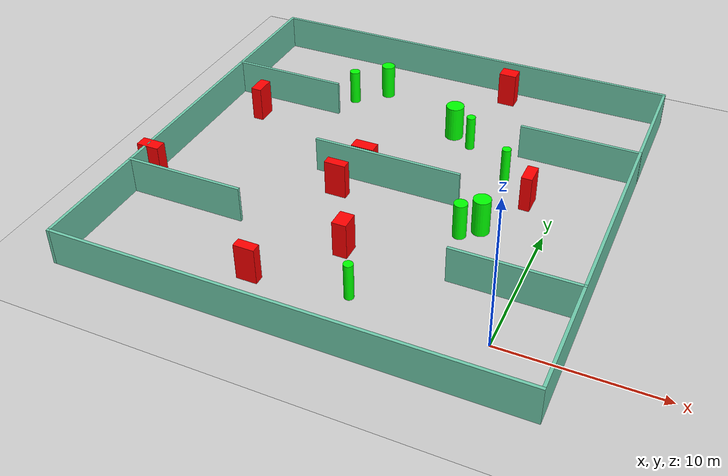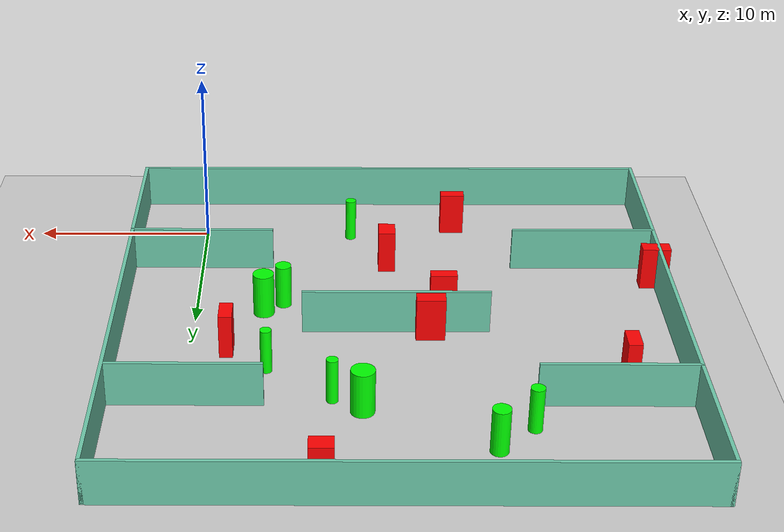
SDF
<sdf version="1.7">
 <world name="default">
  <light name="sun" type="directional">
   <pose>0 0 10 0 -0 0</pose>
   <diffuse>0.8 0.8 0.8 1</diffuse>
   <specular>0.2 0.2 0.2 1</specular>
   <attenuation>
    <range>1000</range>
    <constant>0.9</constant>
    <linear>0.01</linear>
    <quadratic>0.001</quadratic>
   </attenuation>
   <direction>-0.5 0.1 -0.9</direction>
   <spot><inner_angle>0</inner_angle><outer_angle>0</outer_angle><falloff>0</falloff></spot>
  </light>
  <model name="ground_plane">
   <static>1</static>
   <link name="link">
    <collision name="collision">
     <geometry><plane><normal>0 0 1</normal><size>100 100</size></plane></geometry>
     <surface>
      <contact><collide_bitmask>65535</collide_bitmask></contact>
      <friction><ode><mu>100</mu><mu2>50</mu2></ode></friction>
     </surface>
    </collision>
    <visual name="visual">
     <cast_shadows>0</cast_shadows>
     <geometry><plane><normal>0 0 1</normal><size>100 100</size></plane></geometry>
     <material>
      <script><uri>file://media/materials/scripts/gazebo.material</uri><name>Gazebo/Grey</name></script>
     </material>
    </visual>
   </link>
  </model>
  <gravity>0 0 -9.8</gravity>
  <magnetic_field>6e-06 2.3e-05 -4.2e-05</magnetic_field>
  <atmosphere type="adiabatic"/>
  <physics type="ode">
   <max_step_size>0.001</max_step_size>
   <real_time_factor>1</real_time_factor>
   <real_time_update_rate>1000</real_time_update_rate>
  </physics>
  <scene><ambient>0.4 0.4 0.4 1</ambient><background>0.7 0.7 0.7 1</background><shadows>1</shadows></scene>
  <spherical_coordinates>
   <surface_model>EARTH_WGS84</surface_model>
   <latitude_deg>0</latitude_deg>
   <longitude_deg>0</longitude_deg>
   <elevation>0</elevation>
   <heading_deg>0</heading_deg>
  </spherical_coordinates>
  <model name="my_base_walls">
   <link name="Wall_10">
    <collision name="Wall_10_Collision">
     <geometry><box><size>8.2 0.2 2.5</size></box></geometry>
     <pose>0 0 1.25 0 -0 0</pose>
    </collision>
    <visual name="Wall_10_Visual">
     <pose>0 0 1.25 0 -0 0</pose>
     <geometry><box><size>8.2 0.2 2.5</size></box></geometry>
     <material>
      <script><uri>file://media/materials/scripts/gazebo.material</uri><name>Gazebo/Grey</name></script>
      <ambient>0.435294 0.796078 0.67451 1</ambient>
     </material>
     <meta><layer>0</layer></meta>
    </visual>
    <pose>-11 -7 0 0 -0 0</pose>
   </link>
   <link name="Wall_12">
    <collision name="Wall_12_Collision">
     <geometry><box><size>8.2 0.2 2.5</size></box></geometry>
     <pose>0 0 1.25 0 -0 0</pose>
    </collision>
    <visual name="Wall_12_Visual">
     <pose>0 0 1.25 0 -0 0</pose>
     <geometry><box><size>8.2 0.2 2.5</size></box></geometry>
     <material>
      <script><uri>file://media/materials/scripts/gazebo.material</uri><name>Gazebo/Grey</name></script>
      <ambient>0.435294 0.796078 0.67451 1</ambient>
     </material>
     <meta><layer>0</layer></meta>
    </visual>
    <pose>-11 7 0 0 -0 0</pose>
   </link>
   <link name="Wall_14">
    <collision name="Wall_14_Collision">
     <geometry><box><size>8.2 0.2 2.5</size></box></geometry>
     <pose>0 0 1.25 0 -0 0</pose>
    </collision>
    <visual name="Wall_14_Visual">
     <pose>0 0 1.25 0 -0 0</pose>
     <geometry><box><size>8.2 0.2 2.5</size></box></geometry>
     <material>
      <script><uri>file://media/materials/scripts/gazebo.material</uri><name>Gazebo/Grey</name></script>
      <ambient>0.435294 0.796078 0.67451 1</ambient>
     </material>
     <meta><layer>0</layer></meta>
    </visual>
    <pose>11 7 0 0 -0 3.14159</pose>
   </link>
   <link name="Wall_16">
    <collision name="Wall_16_Collision">
     <geometry><box><size>10.2 0.2 2.5</size></box></geometry>
     <pose>0 0 1.25 0 -0 0</pose>
    </collision>
    <visual name="Wall_16_Visual">
     <pose>0 0 1.25 0 -0 0</pose>
     <geometry><box><size>10.2 0.2 2.5</size></box></geometry>
     <material>
      <script><uri>file://media/materials/scripts/gazebo.material</uri><name>Gazebo/Grey</name></script>
      <ambient>0.435294 0.796078 0.67451 1</ambient>
     </material>
     <meta><layer>0</layer></meta>
    </visual>
    <pose>0 0 0 0 -0 3.14159</pose>
   </link>
   <link name="Wall_2">
    <collision name="Wall_2_Collision">
     <geometry><box><size>30.2 0.2 2.5</size></box></geometry>
     <pose>0 0 1.25 0 -0 0</pose>
    </collision>
    <visual name="Wall_2_Visual">
     <pose>0 0 1.25 0 -0 0</pose>
     <geometry><box><size>30.2 0.2 2.5</size></box></geometry>
     <material>
      <script><uri>file://media/materials/scripts/gazebo.material</uri><name>Gazebo/Grey</name></script>
      <ambient>0.435294 0.796078 0.67451 1</ambient>
     </material>
     <meta><layer>0</layer></meta>
    </visual>
    <pose>0 -15 0 0 -0 3.14159</pose>
   </link>
   <link name="Wall_3">
    <collision name="Wall_3_Collision">
     <geometry><box><size>30.2 0.2 2.5</size></box></geometry>
     <pose>0 0 1.25 0 -0 0</pose>
    </collision>
    <visual name="Wall_3_Visual">
     <pose>0 0 1.25 0 -0 0</pose>
     <geometry><box><size>30.2 0.2 2.5</size></box></geometry>
     <material>
      <script><uri>file://media/materials/scripts/gazebo.material</uri><name>Gazebo/Grey</name></script>
      <ambient>0.435294 0.796078 0.67451 1</ambient>
     </material>
     <meta><layer>0</layer></meta>
    </visual>
    <pose>-15 0 0 0 -0 1.5708</pose>
   </link>
   <link name="Wall_4">
    <collision name="Wall_4_Collision">
     <geometry><box><size>30.2 0.2 2.5</size></box></geometry>
     <pose>0 0 1.25 0 -0 0</pose>
    </collision>
    <visual name="Wall_4_Visual">
     <pose>0 0 1.25 0 -0 0</pose>
     <geometry><box><size>30.2 0.2 2.5</size></box></geometry>
     <material>
      <script><uri>file://media/materials/scripts/gazebo.material</uri><name>Gazebo/Grey</name></script>
      <ambient>0.435294 0.796078 0.67451 1</ambient>
     </material>
     <meta><layer>0</layer></meta>
    </visual>
    <pose>0 15 0 0 -0 0</pose>
   </link>
   <link name="Wall_6">
    <collision name="Wall_6_Collision">
     <geometry><box><size>30.2 0.2 2.5</size></box></geometry>
     <pose>0 0 1.25 0 -0 0</pose>
    </collision>
    <visual name="Wall_6_Visual">
     <pose>0 0 1.25 0 -0 0</pose>
     <geometry><box><size>30.2 0.2 2.5</size></box></geometry>
     <material>
      <script><uri>file://media/materials/scripts/gazebo.material</uri><name>Gazebo/Grey</name></script>
      <ambient>0.435294 0.796078 0.67451 1</ambient>
     </material>
     <meta><layer>0</layer></meta>
    </visual>
    <pose>15 0 0 0 -0 1.5708</pose>
   </link>
   <link name="Wall_8">
    <collision name="Wall_8_Collision">
     <geometry><box><size>8.2 0.2 2.5</size></box></geometry>
     <pose>0 0 1.25 0 -0 0</pose>
    </collision>
    <visual name="Wall_8_Visual">
     <pose>0 0 1.25 0 -0 0</pose>
     <geometry><box><size>8.2 0.2 2.5</size></box></geometry>
     <material>
      <script><uri>file://media/materials/scripts/gazebo.material</uri><name>Gazebo/Grey</name></script>
      <ambient>0.435294 0.796078 0.67451 1</ambient>
     </material>
     <meta><layer>0</layer></meta>
    </visual>
    <pose>11 -7 0 0 -0 3.14159</pose>
   </link>
   <static>1</static>
   <pose>-11 11 0 0 -0 0</pose>
  </model>
  <model name="cylinder1">
   <static>1</static>
   <link name="link">
    <inertial>
     <mass>1</mass>
     <inertia><ixx>0.5</ixx><ixy>0</ixy><ixz>0</ixz><iyy>0.5</iyy><iyz>0</iyz><izz>1</izz></inertia>
    </inertial>
    <collision name="collision">
     <geometry><cylinder><radius>0.3054481905468283</radius><length>2.5</length></cylinder></geometry>
    </collision>
    <visual name="visual">
     <geometry><cylinder><radius>0.3054481905468283</radius><length>2.5</length></cylinder></geometry>
     <material>
      <ambient>0 1 0 1</ambient>
      <diffuse>0 1 0 1</diffuse>
      <specular>0.1 0.1 0.1 1</specular>
      <emissive>0 0 0 0</emissive>
     </material>
    </visual>
   </link>
   <pose>-8.627590096709401 0.3876798577821128 1.25 0 0 0</pose>
  </model>
  <model name="cylinder2">
   <static>1</static>
   <link name="link">
    <inertial>
     <mass>1</mass>
     <inertia><ixx>0.5</ixx><ixy>0</ixy><ixz>0</ixz><iyy>0.5</iyy><iyz>0</iyz><izz>1</izz></inertia>
    </inertial>
    <collision name="collision">
     <geometry><cylinder><radius>0.3687715687319021</radius><length>2.5</length></cylinder></geometry>
    </collision>
    <visual name="visual">
     <geometry><cylinder><radius>0.3687715687319021</radius><length>2.5</length></cylinder></geometry>
     <material>
      <ambient>0 1 0 1</ambient>
      <diffuse>0 1 0 1</diffuse>
      <specular>0.1 0.1 0.1 1</specular>
      <emissive>0 0 0 0</emissive>
     </material>
    </visual>
   </link>
   <pose>-17.58797021595309 20.117294164472334 1.25 0 0 0</pose>
  </model>
  <model name="cylinder3">
   <static>1</static>
   <link name="link">
    <inertial>
     <mass>1</mass>
     <inertia><ixx>0.5</ixx><ixy>0</ixy><ixz>0</ixz><iyy>0.5</iyy><iyz>0</iyz><izz>1</izz></inertia>
    </inertial>
    <collision name="collision">
     <geometry><cylinder><radius>0.4434190297697547</radius><length>2.5</length></cylinder></geometry>
    </collision>
    <visual name="visual">
     <geometry><cylinder><radius>0.4434190297697547</radius><length>2.5</length></cylinder></geometry>
     <material>
      <ambient>0 1 0 1</ambient>
      <diffuse>0 1 0 1</diffuse>
      <specular>0.1 0.1 0.1 1</specular>
      <emissive>0 0 0 0</emissive>
     </material>
    </visual>
   </link>
   <pose>-4.815633292169032 8.200437213028582 1.25 0 0 0</pose>
  </model>
  <model name="cylinder4">
   <static>1</static>
   <link name="link">
    <inertial>
     <mass>1</mass>
     <inertia><ixx>0.5</ixx><ixy>0</ixy><ixz>0</ixz><iyy>0.5</iyy><iyz>0</iyz><izz>1</izz></inertia>
    </inertial>
    <collision name="collision">
     <geometry><cylinder><radius>0.6335926558762861</radius><length>2.5</length></cylinder></geometry>
    </collision>
    <visual name="visual">
     <geometry><cylinder><radius>0.6335926558762861</radius><length>2.5</length></cylinder></geometry>
     <material>
      <ambient>0 1 0 1</ambient>
      <diffuse>0 1 0 1</diffuse>
      <specular>0.1 0.1 0.1 1</specular>
      <emissive>0 0 0 0</emissive>
     </material>
    </visual>
   </link>
   <pose>-9.084755179229692 18.59450141080725 1.25 0 0 0</pose>
  </model>
  <model name="cylinder5">
   <static>1</static>
   <link name="link">
    <inertial>
     <mass>1</mass>
     <inertia><ixx>0.5</ixx><ixy>0</ixy><ixz>0</ixz><iyy>0.5</iyy><iyz>0</iyz><izz>1</izz></inertia>
    </inertial>
    <collision name="collision">
     <geometry><cylinder><radius>0.4754250460745518</radius><length>2.5</length></cylinder></geometry>
    </collision>
    <visual name="visual">
     <geometry><cylinder><radius>0.4754250460745518</radius><length>2.5</length></cylinder></geometry>
     <material>
      <ambient>0 1 0 1</ambient>
      <diffuse>0 1 0 1</diffuse>
      <specular>0.1 0.1 0.1 1</specular>
      <emissive>0 0 0 0</emissive>
     </material>
    </visual>
   </link>
   <pose>-15.661851168046205 21.905468786813977 1.25 0 0 0</pose>
  </model>
  <model name="cylinder6">
   <static>1</static>
   <link name="link">
    <inertial>
     <mass>1</mass>
     <inertia><ixx>0.5</ixx><ixy>0</ixy><ixz>0</ixz><iyy>0.5</iyy><iyz>0</iyz><izz>1</izz></inertia>
    </inertial>
    <collision name="collision">
     <geometry><cylinder><radius>0.307872666364747</radius><length>2.5</length></cylinder></geometry>
    </collision>
    <visual name="visual">
     <geometry><cylinder><radius>0.307872666364747</radius><length>2.5</length></cylinder></geometry>
     <material>
      <ambient>0 1 0 1</ambient>
      <diffuse>0 1 0 1</diffuse>
      <specular>0.1 0.1 0.1 1</specular>
      <emissive>0 0 0 0</emissive>
     </material>
    </visual>
   </link>
   <pose>-4.099982868132443 14.90755916535273 1.25 0 0 0</pose>
  </model>
  <model name="cylinder7">
   <static>1</static>
   <link name="link">
    <inertial>
     <mass>1</mass>
     <inertia><ixx>0.5</ixx><ixy>0</ixy><ixz>0</ixz><iyy>0.5</iyy><iyz>0</iyz><izz>1</izz></inertia>
    </inertial>
    <collision name="collision">
     <geometry><cylinder><radius>0.5799055854135846</radius><length>2.5</length></cylinder></geometry>
    </collision>
    <visual name="visual">
     <geometry><cylinder><radius>0.5799055854135846</radius><length>2.5</length></cylinder></geometry>
     <material>
      <ambient>0 1 0 1</ambient>
      <diffuse>0 1 0 1</diffuse>
      <specular>0.1 0.1 0.1 1</specular>
      <emissive>0 0 0 0</emissive>
     </material>
    </visual>
   </link>
   <pose>-3.753097434492222 9.126216994851317 1.25 0 0 0</pose>
  </model>
  <model name="cylinder8">
   <static>1</static>
   <link name="link">
    <inertial>
     <mass>1</mass>
     <inertia><ixx>0.5</ixx><ixy>0</ixy><ixz>0</ixz><iyy>0.5</iyy><iyz>0</iyz><izz>1</izz></inertia>
    </inertial>
    <collision name="collision">
     <geometry><cylinder><radius>0.31210898910389356</radius><length>2.5</length></cylinder></geometry>
    </collision>
    <visual name="visual">
     <geometry><cylinder><radius>0.31210898910389356</radius><length>2.5</length></cylinder></geometry>
     <material>
      <ambient>0 1 0 1</ambient>
      <diffuse>0 1 0 1</diffuse>
      <specular>0.1 0.1 0.1 1</specular>
      <emissive>0 0 0 0</emissive>
     </material>
    </visual>
   </link>
   <pose>-7.555979142427013 17.652088842928684 1.25 0 0 0</pose>
  </model>
  <model name="box1">
   <static>1</static>
   <link name="link">
    <inertial>
     <mass>1</mass>
     <inertia><ixx>0.083</ixx><ixy>0</ixy><ixz>0</ixz><iyy>0.083</iyy><iyz>0</iyz><izz>0.083</izz></inertia>
    </inertial>
    <collision name="collision">
     <geometry><box><size>1.588643393905557 0.8120983000139601 2.5</size></box></geometry>
    </collision>
    <visual name="visual">
     <geometry><box><size>1.588643393905557 0.8120983000139601 2.5</size></box></geometry>
     <material>
      <ambient>1 0 0 1</ambient>
      <diffuse>1 0 0 1</diffuse>
      <specular>0.1 0.1 0.1 1</specular>
      <emissive>0 0 0 0</emissive>
     </material>
    </visual>
    <sensor name="my_contact" type="contact">
     <contact><collision>box_collision</collision><topic>__default_topic__</topic></contact>
    </sensor>
   </link>
   <pose>-25.838062164346862 5.996180521450098 1.25 0 0 0</pose>
  </model>
  <model name="box2">
   <static>1</static>
   <link name="link">
    <inertial>
     <mass>1</mass>
     <inertia><ixx>0.083</ixx><ixy>0</ixy><ixz>0</ixz><iyy>0.083</iyy><iyz>0</iyz><izz>0.083</izz></inertia>
    </inertial>
    <collision name="collision">
     <geometry><box><size>0.7247123410848773 1.460714815653856 2.5</size></box></geometry>
    </collision>
    <visual name="visual">
     <geometry><box><size>0.7247123410848773 1.460714815653856 2.5</size></box></geometry>
     <material>
      <ambient>1 0 0 1</ambient>
      <diffuse>1 0 0 1</diffuse>
      <specular>0.1 0.1 0.1 1</specular>
      <emissive>0 0 0 0</emissive>
     </material>
    </visual>
    <sensor name="my_contact" type="contact">
     <contact><collision>box_collision</collision><topic>__default_topic__</topic></contact>
    </sensor>
   </link>
   <pose>-1.9121377726799977 12.95477718425365 1.25 0 0 0</pose>
  </model>
  <model name="box3">
   <static>1</static>
   <link name="link">
    <inertial>
     <mass>1</mass>
     <inertia><ixx>0.083</ixx><ixy>0</ixy><ixz>0</ixz><iyy>0.083</iyy><iyz>0</iyz><izz>0.083</izz></inertia>
    </inertial>
    <collision name="collision">
     <geometry><box><size>1.5801141933018712 0.8064509219883944 2.5</size></box></geometry>
    </collision>
    <visual name="visual">
     <geometry><box><size>1.5801141933018712 0.8064509219883944 2.5</size></box></geometry>
     <material>
      <ambient>1 0 0 1</ambient>
      <diffuse>1 0 0 1</diffuse>
      <specular>0.1 0.1 0.1 1</specular>
      <emissive>0 0 0 0</emissive>
     </material>
    </visual>
    <sensor name="my_contact" type="contact">
     <contact><collision>box_collision</collision><topic>__default_topic__</topic></contact>
    </sensor>
   </link>
   <pose>-12.839041530843701 11.577716381717128 1.25 0 0 0</pose>
  </model>
  <model name="box4">
   <static>1</static>
   <link name="link">
    <inertial>
     <mass>1</mass>
     <inertia><ixx>0.083</ixx><ixy>0</ixy><ixz>0</ixz><iyy>0.083</iyy><iyz>0</iyz><izz>0.083</izz></inertia>
    </inertial>
    <collision name="collision">
     <geometry><box><size>0.7455856619505754 1.3933270667605218 2.5</size></box></geometry>
    </collision>
    <visual name="visual">
     <geometry><box><size>0.7455856619505754 1.3933270667605218 2.5</size></box></geometry>
     <material>
      <ambient>1 0 0 1</ambient>
      <diffuse>1 0 0 1</diffuse>
      <specular>0.1 0.1 0.1 1</specular>
      <emissive>0 0 0 0</emissive>
     </material>
    </visual>
    <sensor name="my_contact" type="contact">
     <contact><collision>box_collision</collision><topic>__default_topic__</topic></contact>
    </sensor>
   </link>
   <pose>-22.994463661034413 15.574796241377477 1.25 0 0 0</pose>
  </model>
  <model name="box5">
   <static>1</static>
   <link name="link">
    <inertial>
     <mass>1</mass>
     <inertia><ixx>0.083</ixx><ixy>0</ixy><ixz>0</ixz><iyy>0.083</iyy><iyz>0</iyz><izz>0.083</izz></inertia>
    </inertial>
    <collision name="collision">
     <geometry><box><size>1.237837329796808 0.9768797051607838 2.5</size></box></geometry>
    </collision>
    <visual name="visual">
     <geometry><box><size>1.237837329796808 0.9768797051607838 2.5</size></box></geometry>
     <material>
      <ambient>1 0 0 1</ambient>
      <diffuse>1 0 0 1</diffuse>
      <specular>0.1 0.1 0.1 1</specular>
      <emissive>0 0 0 0</emissive>
     </material>
    </visual>
    <sensor name="my_contact" type="contact">
     <contact><collision>box_collision</collision><topic>__default_topic__</topic></contact>
    </sensor>
   </link>
   <pose>-7.057802710201102 24.59298109247412 1.25 0 0 0</pose>
  </model>
  <model name="box6">
   <static>1</static>
   <link name="link">
    <inertial>
     <mass>1</mass>
     <inertia><ixx>0.083</ixx><ixy>0</ixy><ixz>0</ixz><iyy>0.083</iyy><iyz>0</iyz><izz>0.083</izz></inertia>
    </inertial>
    <collision name="collision">
     <geometry><box><size>0.9527323266868075 1.2130626759859813 2.5</size></box></geometry>
    </collision>
    <visual name="visual">
     <geometry><box><size>0.9527323266868075 1.2130626759859813 2.5</size></box></geometry>
     <material>
      <ambient>1 0 0 1</ambient>
      <diffuse>1 0 0 1</diffuse>
      <specular>0.1 0.1 0.1 1</specular>
      <emissive>0 0 0 0</emissive>
     </material>
    </visual>
    <sensor name="my_contact" type="contact">
     <contact><collision>box_collision</collision><topic>__default_topic__</topic></contact>
    </sensor>
   </link>
   <pose>-10.677570857026858 3.9324063481618685 1.25 0 0 0</pose>
  </model>
  <model name="box7">
   <static>1</static>
   <link name="link">
    <inertial>
     <mass>1</mass>
     <inertia><ixx>0.083</ixx><ixy>0</ixy><ixz>0</ixz><iyy>0.083</iyy><iyz>0</iyz><izz>0.083</izz></inertia>
    </inertial>
    <collision name="collision">
     <geometry><box><size>1.4639791090692746 0.6167546350223995 2.5</size></box></geometry>
    </collision>
    <visual name="visual">
     <geometry><box><size>1.4639791090692746 0.6167546350223995 2.5</size></box></geometry>
     <material>
      <ambient>1 0 0 1</ambient>
      <diffuse>1 0 0 1</diffuse>
      <specular>0.1 0.1 0.1 1</specular>
      <emissive>0 0 0 0</emissive>
     </material>
    </visual>
    <sensor name="my_contact" type="contact">
     <contact><collision>box_collision</collision><topic>__default_topic__</topic></contact>
    </sensor>
   </link>
   <pose>-13.662582287415834 9.059979880835044 1.25 0 0 0</pose>
  </model>
  <model name="box8">
   <static>1</static>
   <link name="link">
    <inertial>
     <mass>1</mass>
     <inertia><ixx>0.083</ixx><ixy>0</ixy><ixz>0</ixz><iyy>0.083</iyy><iyz>0</iyz><izz>0.083</izz></inertia>
    </inertial>
    <collision name="collision">
     <geometry><box><size>1.370899955900475 0.6341530305181523 2.5</size></box></geometry>
    </collision>
    <visual name="visual">
     <geometry><box><size>1.370899955900475 0.6341530305181523 2.5</size></box></geometry>
     <material>
      <ambient>1 0 0 1</ambient>
      <diffuse>1 0 0 1</diffuse>
      <specular>0.1 0.1 0.1 1</specular>
      <emissive>0 0 0 0</emissive>
     </material>
    </visual>
    <sensor name="my_contact" type="contact">
     <contact><collision>box_collision</collision><topic>__default_topic__</topic></contact>
    </sensor>
   </link>
   <pose>-14.720439848008512 -0.5067640942043639 1.25 0 0 0</pose>
  </model>
 </world>
</sdf>
